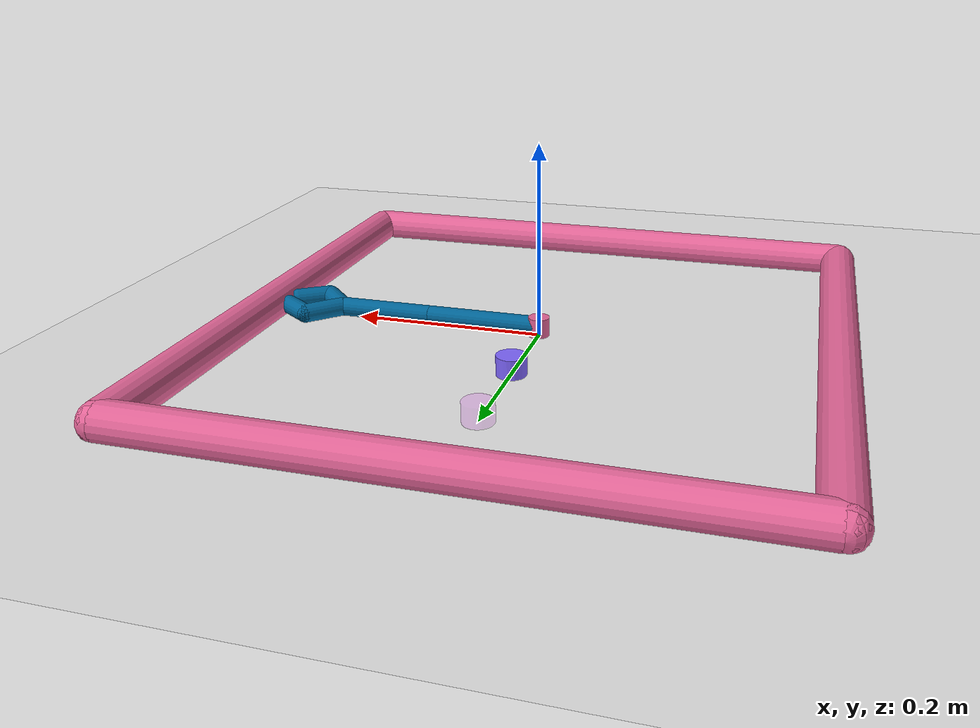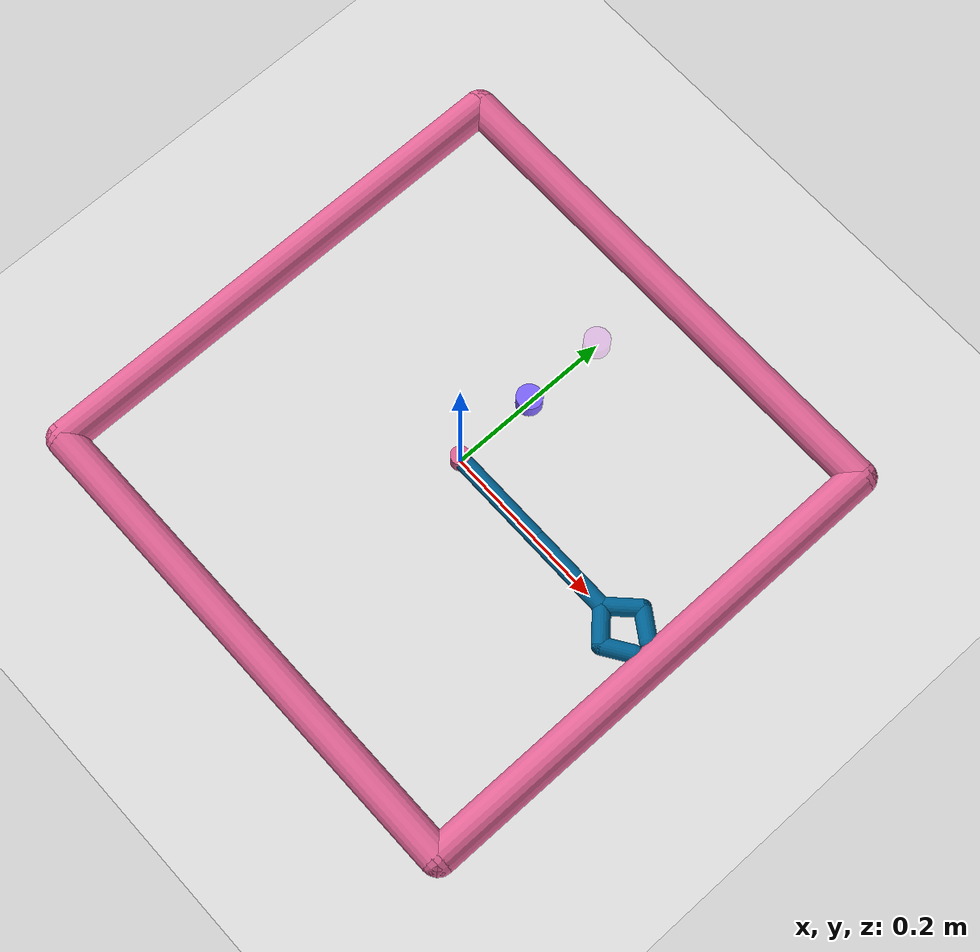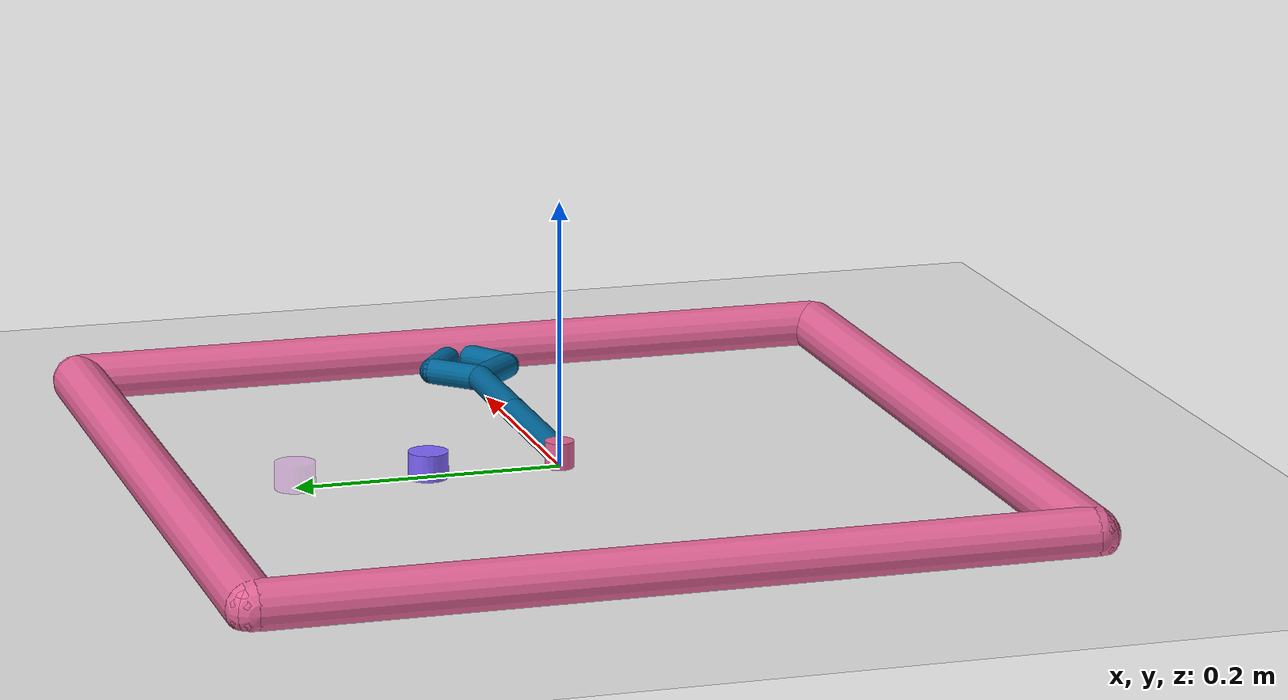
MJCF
<mujoco model="reacher">
	<compiler angle="radian" inertiafromgeom="true"/>
	<default>
		<joint armature="1" damping="1" limited="true" frictionloss="0.09"/>
		<geom contype="1" friction="1 0.1 0.1" rgba="0.7 0.7 0 1"/>
	</default>
	<option gravity="0 0 -9.81" integrator="RK4" timestep="0.01"/>
	<worldbody>
		<!-- Arena -->
		<geom conaffinity="0" contype="0" name="ground" pos="0 0 0" rgba="0.9 0.9 0.9 1" size="1 1 10" type="plane"/>
		<geom conaffinity="1" contype="1" fromto="-.3 -.3 .01 .3 -.3 .01" name="sideS" rgba="0.9 0.4 0.6 1" size=".02" type="capsule"/>
		<geom conaffinity="1" contype="1" fromto=" .3 -.3 .01 .3  .3 .01" name="sideE" rgba="0.9 0.4 0.6 1" size=".02" type="capsule"/>
		<geom conaffinity="1" contype="1" fromto="-.3  .3 .01 .3  .3 .01" name="sideN" rgba="0.9 0.4 0.6 1" size=".02" type="capsule"/>
		<geom conaffinity="1" contype="1" fromto="-.3 -.3 .01 -.3 .3 .01" name="sideW" rgba="0.9 0.4 0.6 1" size=".02" type="capsule"/>
		<!-- Arm -->
		<geom conaffinity="0" contype="0" fromto="0 0 0 0 0 0.02" name="root" rgba="0.9 0.4 0.6 1" size=".011" type="cylinder"/>
		<body name="body0" pos="0 0 .01">
			<geom fromto="0 0 0 0.12 0 0" name="link0" rgba="0.0 0.4 0.6 1" size=".01" type="capsule"/>
			<joint axis="0 0 1" limited="false" name="joint0" pos="0 0 0" type="hinge"/>
			<body name="body1" pos="0.12 0 0">
				<joint axis="0 0 1" limited="true" name="joint1" pos="0 0 0" range="-2.5 2.5" type="hinge"/>
				<geom fromto="0 0 0 0.1 0 0" name="link1" rgba="0.0 0.4 0.6 1" size=".01" type="capsule"/>
				<body name="gripper1" pos="0.1 0 0">
                    <joint axis="0 0 1" limited="true" name="joint2" pos="0 0 0" range="-1.5 0.0" type="hinge"/>
                    <geom fromto="0 0 0 0.03 -0.03 0" name="g1" rgba="0.0 0.4 0.6 1" size=".01" type="capsule"/>
                    <body name="gripper11" pos="0.03 -0.03 0">
                        <geom fromto="0 0 0 0.03 0.02 0" name="g11" rgba="0.0 0.4 0.6 1" size=".01" type="capsule"/>
                    </body>
				</body>

                <body name="gripper2" pos="0.1 0 0">
                    <joint axis="0 0 1" limited="true" name="joint3" pos="0 0 0" range="-3.0 3.0" type="hinge"/>
                    <geom fromto="0 0 0 0.03 0.03 0" name="g2" rgba="0.0 0.4 0.6 1" size=".01" type="capsule"/>
                    <body name="gripper21" pos="0.03 0.03 0">
                        <geom fromto="0 0 0 0.03 -0.02 0" name="g21" rgba="0.0 0.4 0.6 1" size=".01" type="capsule"/>
                    </body>
				</body>
			</body>
		</body>

        <body name="cyliner" pos="0.0 0.1 0.01">
            <geom name="cyl_geom" rgba="0.5 0.4 1.0 1" size=".015 0.01" type="cylinder" contype="1"/>
            <joint axis="1 0 0" limited="false" name="cyl_joint1" pos="0 0 0" type="slide" frictionloss="1"/>
            <joint axis="0 1 0" limited="false" name="cyl_joint2" pos="0 0 0" type="slide" frictionloss="1"/>
        </body>

		<!-- Target -->
        <body name="target_cyl" pos="0.0 0.2 0.01">
            <site name="target" pos="0 0 0" rgba="0.9 0.2 1.2 0.1" size=".015 0.01" type="cylinder"/>
        </body>

	</worldbody>

    <equality>
        <joint name="joint_const" joint1="joint2" joint2="joint3" polycoef="0 -1 0 0 0"/>
    </equality>

	<actuator>
		<motor ctrllimited="true" ctrlrange="-1.0 1.0" gear="1.0" joint="joint0"/>
		<motor ctrllimited="true" ctrlrange="-1.0 1.0" gear="1.0" joint="joint1"/>
        <motor ctrllimited="true" ctrlrange="-1.0 1.0" gear="1.0" joint="joint2"/>
	</actuator>
</mujoco>
